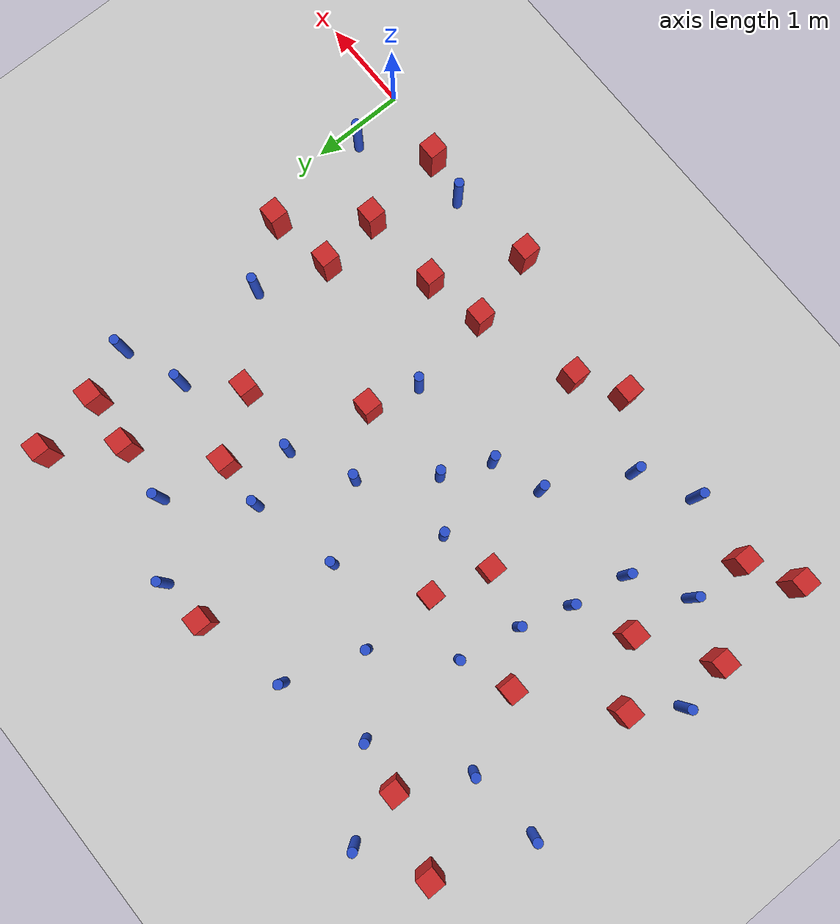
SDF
<sdf version="1.6">
 <world name="default">
  <model name="ground_plane">
   <static>1</static>
   <link name="link">
    <collision name="collision">
     <geometry><plane><normal>0 0 1</normal><size>100 100</size></plane></geometry>
     <surface><friction><ode><mu>100</mu><mu2>50</mu2></ode></friction></surface>
    </collision>
    <visual name="visual">
     <cast_shadows>0</cast_shadows>
     <geometry><plane><normal>0 0 1</normal><size>100 100</size></plane></geometry>
     <material>
      <ambient>1.0 1.0 1.0 1.0</ambient>
      <diffuse>0.8 0.8 0.8 1.0</diffuse>
      <specular>0.01 0.01 0.01 1.000000</specular>
     </material>
    </visual>
   </link>
  </model>
  <model name="pole_obstacle6">
   <static>true</static>
   <pose>-5.10376092105 2.55919030713 -9.47619616065e-06 5.49618799738e-07 2.36310414051e-07 -1.55090534805e-07</pose>
   <link name="link">
    <pose>0 0 0.3 0 -0 0</pose>
    <inertial>
     <mass>1</mass>
     <inertia><ixx>0.145833</ixx><ixy>0</ixy><ixz>0</ixz><iyy>0.145833</iyy><iyz>0</iyz><izz>0.125</izz></inertia>
    </inertial>
    <collision name="collision">
     <geometry><cylinder><radius>0.05</radius><length>.6</length></cylinder></geometry>
    </collision>
    <visual name="visual">
     <geometry><cylinder><radius>0.05</radius><length>.6</length></cylinder></geometry>
     <material>
      <script><name>Gazebo/Blue</name><uri>file://media/materials/scripts/gazebo.material</uri></script>
     </material>
    </visual>
   </link>
  </model>
  <model name="pole_obstacle7">
   <static>true</static>
   <pose>-5.00055378148 4.37309625407 -9.47619616065e-06 5.49618799737e-07 2.36310414037e-07 -1.55090534814e-07</pose>
   <link name="link">
    <pose>0 0 0.3 0 -0 0</pose>
    <inertial>
     <mass>1</mass>
     <inertia><ixx>0.145833</ixx><ixy>0</ixy><ixz>0</ixz><iyy>0.145833</iyy><iyz>0</iyz><izz>0.125</izz></inertia>
    </inertial>
    <collision name="collision">
     <geometry><cylinder><radius>0.05</radius><length>.6</length></cylinder></geometry>
    </collision>
    <visual name="visual">
     <geometry><cylinder><radius>0.05</radius><length>.6</length></cylinder></geometry>
     <material>
      <script><name>Gazebo/Blue</name><uri>file://media/materials/scripts/gazebo.material</uri></script>
     </material>
    </visual>
   </link>
  </model>
  <model name="pole_obstacle13">
   <static>true</static>
   <pose>-5.23885158348 0.395496682585 -9.47619616065e-06 5.49618799737e-07 2.36310414057e-07 -1.55090534802e-07</pose>
   <link name="link">
    <pose>0 0 0.3 0 -0 0</pose>
    <inertial>
     <mass>1</mass>
     <inertia><ixx>0.145833</ixx><ixy>0</ixy><ixz>0</ixz><iyy>0.145833</iyy><iyz>0</iyz><izz>0.125</izz></inertia>
    </inertial>
    <collision name="collision">
     <geometry><cylinder><radius>0.05</radius><length>.6</length></cylinder></geometry>
    </collision>
    <visual name="visual">
     <geometry><cylinder><radius>0.05</radius><length>.6</length></cylinder></geometry>
     <material>
      <script><name>Gazebo/Blue</name><uri>file://media/materials/scripts/gazebo.material</uri></script>
     </material>
    </visual>
   </link>
  </model>
  <model name="square_post_obstacle12">
   <static>true</static>
   <pose>-4.01311779121 0.254424688509 -6.11067671241e-07 -5.50515727128e-06 -8.79689657224e-07 2.37013304536e-05</pose>
   <link name="link">
    <pose>0 0 0.25 0 -0 0</pose>
    <inertial>
     <mass>100</mass>
     <inertia>
      <ixx>0.166667</ixx>
      <ixy>0</ixy>
      <ixz>0</ixz>
      <iyy>0.166667</iyy>
      <iyz>0</iyz>
      <izz>0.166667</izz>
     </inertia>
    </inertial>
    <collision name="collision"><geometry><box><size>.2 .2 .5</size></box></geometry></collision>
    <visual name="visual">
     <geometry><box><size>.2 .2 .5</size></box></geometry>
     <material>
      <script><name>Gazebo/Red</name><uri>file://media/materials/scripts/gazebo.material</uri></script>
     </material>
    </visual>
   </link>
  </model>
  <model name="square_post_obstacle18">
   <static>true</static>
   <pose>-1.27208905666 4.46009019754 -6.11067671241e-07 -5.50515727128e-06 -8.79689657224e-07 2.37013304536e-05</pose>
   <link name="link">
    <pose>0 0 0.25 0 -0 0</pose>
    <inertial>
     <mass>100</mass>
     <inertia>
      <ixx>0.166667</ixx>
      <ixy>0</ixy>
      <ixz>0</ixz>
      <iyy>0.166667</iyy>
      <iyz>0</iyz>
      <izz>0.166667</izz>
     </inertia>
    </inertial>
    <collision name="collision"><geometry><box><size>.2 .2 .5</size></box></geometry></collision>
    <visual name="visual">
     <geometry><box><size>.2 .2 .5</size></box></geometry>
     <material>
      <script><name>Gazebo/Red</name><uri>file://media/materials/scripts/gazebo.material</uri></script>
     </material>
    </visual>
   </link>
  </model>
  <model name="square_post_obstacle26">
   <static>true</static>
   <pose>-2.49033802573 0.884904340049 -6.11067671241e-07 -5.50515727128e-06 -8.79689657224e-07 2.37013304536e-05</pose>
   <link name="link">
    <pose>0 0 0.25 0 -0 0</pose>
    <inertial>
     <mass>100</mass>
     <inertia>
      <ixx>0.166667</ixx>
      <ixy>0</ixy>
      <ixz>0</ixz>
      <iyy>0.166667</iyy>
      <iyz>0</iyz>
      <izz>0.166667</izz>
     </inertia>
    </inertial>
    <collision name="collision"><geometry><box><size>.2 .2 .5</size></box></geometry></collision>
    <visual name="visual">
     <geometry><box><size>.2 .2 .5</size></box></geometry>
     <material>
      <script><name>Gazebo/Red</name><uri>file://media/materials/scripts/gazebo.material</uri></script>
     </material>
    </visual>
   </link>
  </model>
  <model name="square_post_obstacle29">
   <static>true</static>
   <pose>-5.84663001964 1.76819475787 -6.11067671241e-07 -5.50515727128e-06 -8.79689657224e-07 2.37013304536e-05</pose>
   <link name="link">
    <pose>0 0 0.25 0 -0 0</pose>
    <inertial>
     <mass>100</mass>
     <inertia>
      <ixx>0.166667</ixx>
      <ixy>0</ixy>
      <ixz>0</ixz>
      <iyy>0.166667</iyy>
      <iyz>0</iyz>
      <izz>0.166667</izz>
     </inertia>
    </inertial>
    <collision name="collision"><geometry><box><size>.2 .2 .5</size></box></geometry></collision>
    <visual name="visual">
     <geometry><box><size>.2 .2 .5</size></box></geometry>
     <material>
      <script><name>Gazebo/Red</name><uri>file://media/materials/scripts/gazebo.material</uri></script>
     </material>
    </visual>
   </link>
  </model>
  <model name="pole_obstacle42">
   <static>true</static>
   <pose>-0.197924923619 0.635188465131 -9.47619616065e-06 5.49618799737e-07 2.36310414049e-07 -1.55090534807e-07</pose>
   <link name="link">
    <pose>0 0 0.3 0 -0 0</pose>
    <inertial>
     <mass>1</mass>
     <inertia><ixx>0.145833</ixx><ixy>0</ixy><ixz>0</ixz><iyy>0.145833</iyy><iyz>0</iyz><izz>0.125</izz></inertia>
    </inertial>
    <collision name="collision">
     <geometry><cylinder><radius>0.05</radius><length>.6</length></cylinder></geometry>
    </collision>
    <visual name="visual">
     <geometry><cylinder><radius>0.05</radius><length>.6</length></cylinder></geometry>
     <material>
      <script><name>Gazebo/Blue</name><uri>file://media/materials/scripts/gazebo.material</uri></script>
     </material>
    </visual>
   </link>
  </model>
  <model name="square_post_obstacle33">
   <static>true</static>
   <pose>-6.34039666335 4.67710620537 -6.11067671241e-07 -5.50515727128e-06 -8.79689657224e-07 2.37013304536e-05</pose>
   <link name="link">
    <pose>0 0 0.25 0 -0 0</pose>
    <inertial>
     <mass>100</mass>
     <inertia>
      <ixx>0.166667</ixx>
      <ixy>0</ixy>
      <ixz>0</ixz>
      <iyy>0.166667</iyy>
      <iyz>0</iyz>
      <izz>0.166667</izz>
     </inertia>
    </inertial>
    <collision name="collision"><geometry><box><size>.2 .2 .5</size></box></geometry></collision>
    <visual name="visual">
     <geometry><box><size>.2 .2 .5</size></box></geometry>
     <material>
      <script><name>Gazebo/Red</name><uri>file://media/materials/scripts/gazebo.material</uri></script>
     </material>
    </visual>
   </link>
  </model>
  <model name="pole_obstacle49">
   <static>true</static>
   <pose>-3.70185155784 1.71580519767 -9.47619616065e-06 5.49618799737e-07 2.36310414072e-07 -1.55090534793e-07</pose>
   <link name="link">
    <pose>0 0 0.3 0 -0 0</pose>
    <inertial>
     <mass>1</mass>
     <inertia><ixx>0.145833</ixx><ixy>0</ixy><ixz>0</ixz><iyy>0.145833</iyy><iyz>0</iyz><izz>0.125</izz></inertia>
    </inertial>
    <collision name="collision">
     <geometry><cylinder><radius>0.05</radius><length>.6</length></cylinder></geometry>
    </collision>
    <visual name="visual">
     <geometry><cylinder><radius>0.05</radius><length>.6</length></cylinder></geometry>
     <material>
      <script><name>Gazebo/Blue</name><uri>file://media/materials/scripts/gazebo.material</uri></script>
     </material>
    </visual>
   </link>
  </model>
  <model name="pole_obstacle50">
   <static>true</static>
   <pose>-1.11218224081 3.6363627773 -9.47619616065e-06 5.49618799737e-07 2.36310414062e-07 -1.55090534798e-07</pose>
   <link name="link">
    <pose>0 0 0.3 0 -0 0</pose>
    <inertial>
     <mass>1</mass>
     <inertia><ixx>0.145833</ixx><ixy>0</ixy><ixz>0</ixz><iyy>0.145833</iyy><iyz>0</iyz><izz>0.125</izz></inertia>
    </inertial>
    <collision name="collision">
     <geometry><cylinder><radius>0.05</radius><length>.6</length></cylinder></geometry>
    </collision>
    <visual name="visual">
     <geometry><cylinder><radius>0.05</radius><length>.6</length></cylinder></geometry>
     <material>
      <script><name>Gazebo/Blue</name><uri>file://media/materials/scripts/gazebo.material</uri></script>
     </material>
    </visual>
   </link>
  </model>
  <model name="pole_obstacle63">
   <static>true</static>
   <pose>-2.63571803715 1.79776056656 -9.47619616065e-06 5.49618799737e-07 2.36310414072e-07 -1.55090534793e-07</pose>
   <link name="link">
    <pose>0 0 0.3 0 -0 0</pose>
    <inertial>
     <mass>1</mass>
     <inertia><ixx>0.145833</ixx><ixy>0</ixy><ixz>0</ixz><iyy>0.145833</iyy><iyz>0</iyz><izz>0.125</izz></inertia>
    </inertial>
    <collision name="collision">
     <geometry><cylinder><radius>0.05</radius><length>.6</length></cylinder></geometry>
    </collision>
    <visual name="visual">
     <geometry><cylinder><radius>0.05</radius><length>.6</length></cylinder></geometry>
     <material>
      <script><name>Gazebo/Blue</name><uri>file://media/materials/scripts/gazebo.material</uri></script>
     </material>
    </visual>
   </link>
  </model>
  <model name="pole_obstacle66">
   <static>true</static>
   <pose>-4.34469611107 3.8348406761 -9.47619616065e-06 5.49618799738e-07 2.36310414051e-07 -1.55090534805e-07</pose>
   <link name="link">
    <pose>0 0 0.3 0 -0 0</pose>
    <inertial>
     <mass>1</mass>
     <inertia><ixx>0.145833</ixx><ixy>0</ixy><ixz>0</ixz><iyy>0.145833</iyy><iyz>0</iyz><izz>0.125</izz></inertia>
    </inertial>
    <collision name="collision">
     <geometry><cylinder><radius>0.05</radius><length>.6</length></cylinder></geometry>
    </collision>
    <visual name="visual">
     <geometry><cylinder><radius>0.05</radius><length>.6</length></cylinder></geometry>
     <material>
      <script><name>Gazebo/Blue</name><uri>file://media/materials/scripts/gazebo.material</uri></script>
     </material>
    </visual>
   </link>
  </model>
  <model name="square_post_obstacle51">
   <static>true</static>
   <pose>-3.54383364786 0.54393833734 -6.11067671241e-07 -5.50515727128e-06 -8.79689657224e-07 2.37013304536e-05</pose>
   <link name="link">
    <pose>0 0 0.25 0 -0 0</pose>
    <inertial>
     <mass>100</mass>
     <inertia>
      <ixx>0.166667</ixx>
      <ixy>0</ixy>
      <ixz>0</ixz>
      <iyy>0.166667</iyy>
      <iyz>0</iyz>
      <izz>0.166667</izz>
     </inertia>
    </inertial>
    <collision name="collision"><geometry><box><size>.2 .2 .5</size></box></geometry></collision>
    <visual name="visual">
     <geometry><box><size>.2 .2 .5</size></box></geometry>
     <material>
      <script><name>Gazebo/Red</name><uri>file://media/materials/scripts/gazebo.material</uri></script>
     </material>
    </visual>
   </link>
  </model>
  <model name="square_post_obstacle58">
   <static>true</static>
   <pose>-1.85950235046 1.02076430754 -6.11067671241e-07 -5.50515727128e-06 -8.79689657224e-07 2.37013304536e-05</pose>
   <link name="link">
    <pose>0 0 0.25 0 -0 0</pose>
    <inertial>
     <mass>100</mass>
     <inertia>
      <ixx>0.166667</ixx>
      <ixy>0</ixy>
      <ixz>0</ixz>
      <iyy>0.166667</iyy>
      <iyz>0</iyz>
      <izz>0.166667</izz>
     </inertia>
    </inertial>
    <collision name="collision"><geometry><box><size>.2 .2 .5</size></box></geometry></collision>
    <visual name="visual">
     <geometry><box><size>.2 .2 .5</size></box></geometry>
     <material>
      <script><name>Gazebo/Red</name><uri>file://media/materials/scripts/gazebo.material</uri></script>
     </material>
    </visual>
   </link>
  </model>
  <model name="square_post_obstacle61">
   <static>true</static>
   <pose>-5.53237518745 4.44835196103 -6.11067671241e-07 -5.50515727128e-06 -8.79689657224e-07 2.37013304536e-05</pose>
   <link name="link">
    <pose>0 0 0.25 0 -0 0</pose>
    <inertial>
     <mass>100</mass>
     <inertia>
      <ixx>0.166667</ixx>
      <ixy>0</ixy>
      <ixz>0</ixz>
      <iyy>0.166667</iyy>
      <iyz>0</iyz>
      <izz>0.166667</izz>
     </inertia>
    </inertial>
    <collision name="collision"><geometry><box><size>.2 .2 .5</size></box></geometry></collision>
    <visual name="visual">
     <geometry><box><size>.2 .2 .5</size></box></geometry>
     <material>
      <script><name>Gazebo/Red</name><uri>file://media/materials/scripts/gazebo.material</uri></script>
     </material>
    </visual>
   </link>
  </model>
  <model name="pole_obstacle73">
   <static>true</static>
   <pose>-4.21944713733 1.53317868499 -9.47619616065e-06 5.49618799738e-07 2.36310414071e-07 -1.55090534796e-07</pose>
   <link name="link">
    <pose>0 0 0.3 0 -0 0</pose>
    <inertial>
     <mass>1</mass>
     <inertia><ixx>0.145833</ixx><ixy>0</ixy><ixz>0</ixz><iyy>0.145833</iyy><iyz>0</iyz><izz>0.125</izz></inertia>
    </inertial>
    <collision name="collision">
     <geometry><cylinder><radius>0.05</radius><length>.6</length></cylinder></geometry>
    </collision>
    <visual name="visual">
     <geometry><cylinder><radius>0.05</radius><length>.6</length></cylinder></geometry>
     <material>
      <script><name>Gazebo/Blue</name><uri>file://media/materials/scripts/gazebo.material</uri></script>
     </material>
    </visual>
   </link>
  </model>
  <model name="square_post_obstacle66">
   <static>true</static>
   <pose>-6.4949730244 0.183222746557 -6.11067671241e-07 -5.50515727128e-06 -8.79689657224e-07 2.37013304536e-05</pose>
   <link name="link">
    <pose>0 0 0.25 0 -0 0</pose>
    <inertial>
     <mass>100</mass>
     <inertia>
      <ixx>0.166667</ixx>
      <ixy>0</ixy>
      <ixz>0</ixz>
      <iyy>0.166667</iyy>
      <iyz>0</iyz>
      <izz>0.166667</izz>
     </inertia>
    </inertial>
    <collision name="collision"><geometry><box><size>.2 .2 .5</size></box></geometry></collision>
    <visual name="visual">
     <geometry><box><size>.2 .2 .5</size></box></geometry>
     <material>
      <script><name>Gazebo/Red</name><uri>file://media/materials/scripts/gazebo.material</uri></script>
     </material>
    </visual>
   </link>
  </model>
  <model name="pole_obstacle91">
   <static>true</static>
   <pose>-5.95068316213 1.07844094453 -9.47619616065e-06 5.49618799738e-07 2.36310414071e-07 -1.55090534796e-07</pose>
   <link name="link">
    <pose>0 0 0.3 0 -0 0</pose>
    <inertial>
     <mass>1</mass>
     <inertia><ixx>0.145833</ixx><ixy>0</ixy><ixz>0</ixz><iyy>0.145833</iyy><iyz>0</iyz><izz>0.125</izz></inertia>
    </inertial>
    <collision name="collision">
     <geometry><cylinder><radius>0.05</radius><length>.6</length></cylinder></geometry>
    </collision>
    <visual name="visual">
     <geometry><cylinder><radius>0.05</radius><length>.6</length></cylinder></geometry>
     <material>
      <script><name>Gazebo/Blue</name><uri>file://media/materials/scripts/gazebo.material</uri></script>
     </material>
    </visual>
   </link>
  </model>
  <model name="pole_obstacle92">
   <static>true</static>
   <pose>-2.56406762302 3.80577087589 -9.47619616065e-06 5.49618799737e-07 2.36310414051e-07 -1.55090534807e-07</pose>
   <link name="link">
    <pose>0 0 0.3 0 -0 0</pose>
    <inertial>
     <mass>1</mass>
     <inertia><ixx>0.145833</ixx><ixy>0</ixy><ixz>0</ixz><iyy>0.145833</iyy><iyz>0</iyz><izz>0.125</izz></inertia>
    </inertial>
    <collision name="collision">
     <geometry><cylinder><radius>0.05</radius><length>.6</length></cylinder></geometry>
    </collision>
    <visual name="visual">
     <geometry><cylinder><radius>0.05</radius><length>.6</length></cylinder></geometry>
     <material>
      <script><name>Gazebo/Blue</name><uri>file://media/materials/scripts/gazebo.material</uri></script>
     </material>
    </visual>
   </link>
  </model>
  <model name="pole_obstacle94">
   <static>true</static>
   <pose>-2.9785415067 2.89215586736 -9.47619616065e-06 5.49618799737e-07 2.36310414051e-07 -1.55090534807e-07</pose>
   <link name="link">
    <pose>0 0 0.3 0 -0 0</pose>
    <inertial>
     <mass>1</mass>
     <inertia><ixx>0.145833</ixx><ixy>0</ixy><ixz>0</ixz><iyy>0.145833</iyy><iyz>0</iyz><izz>0.125</izz></inertia>
    </inertial>
    <collision name="collision">
     <geometry><cylinder><radius>0.05</radius><length>.6</length></cylinder></geometry>
    </collision>
    <visual name="visual">
     <geometry><cylinder><radius>0.05</radius><length>.6</length></cylinder></geometry>
     <material>
      <script><name>Gazebo/Blue</name><uri>file://media/materials/scripts/gazebo.material</uri></script>
     </material>
    </visual>
   </link>
  </model>
  <model name="pole_obstacle103">
   <static>true</static>
   <pose>-2.33113232156 3.22481978888 -9.47619616065e-06 5.49618799737e-07 2.36310414051e-07 -1.55090534807e-07</pose>
   <link name="link">
    <pose>0 0 0.3 0 -0 0</pose>
    <inertial>
     <mass>1</mass>
     <inertia><ixx>0.145833</ixx><ixy>0</ixy><ixz>0</ixz><iyy>0.145833</iyy><iyz>0</iyz><izz>0.125</izz></inertia>
    </inertial>
    <collision name="collision">
     <geometry><cylinder><radius>0.05</radius><length>.6</length></cylinder></geometry>
    </collision>
    <visual name="visual">
     <geometry><cylinder><radius>0.05</radius><length>.6</length></cylinder></geometry>
     <material>
      <script><name>Gazebo/Blue</name><uri>file://media/materials/scripts/gazebo.material</uri></script>
     </material>
    </visual>
   </link>
  </model>
  <model name="pole_obstacle104">
   <static>true</static>
   <pose>-1.34352056706 0.227027937881 -9.47619616065e-06 5.49618799737e-07 2.36310414063e-07 -1.55090534798e-07</pose>
   <link name="link">
    <pose>0 0 0.3 0 -0 0</pose>
    <inertial>
     <mass>1</mass>
     <inertia><ixx>0.145833</ixx><ixy>0</ixy><ixz>0</ixz><iyy>0.145833</iyy><iyz>0</iyz><izz>0.125</izz></inertia>
    </inertial>
    <collision name="collision">
     <geometry><cylinder><radius>0.05</radius><length>.6</length></cylinder></geometry>
    </collision>
    <visual name="visual">
     <geometry><cylinder><radius>0.05</radius><length>.6</length></cylinder></geometry>
     <material>
      <script><name>Gazebo/Blue</name><uri>file://media/materials/scripts/gazebo.material</uri></script>
     </material>
    </visual>
   </link>
  </model>
  <model name="pole_obstacle105">
   <static>true</static>
   <pose>-3.49215399866 3.57960215847 -9.47619616065e-06 5.49618799737e-07 2.36310414067e-07 -1.55090534797e-07</pose>
   <link name="link">
    <pose>0 0 0.3 0 -0 0</pose>
    <inertial>
     <mass>1</mass>
     <inertia><ixx>0.145833</ixx><ixy>0</ixy><ixz>0</ixz><iyy>0.145833</iyy><iyz>0</iyz><izz>0.125</izz></inertia>
    </inertial>
    <collision name="collision">
     <geometry><cylinder><radius>0.05</radius><length>.6</length></cylinder></geometry>
    </collision>
    <visual name="visual">
     <geometry><cylinder><radius>0.05</radius><length>.6</length></cylinder></geometry>
     <material>
      <script><name>Gazebo/Blue</name><uri>file://media/materials/scripts/gazebo.material</uri></script>
     </material>
    </visual>
   </link>
  </model>
  <model name="pole_obstacle108">
   <static>true</static>
   <pose>-6.67488484027 3.69238317947 -9.47619616065e-06 5.49618799738e-07 2.36310414051e-07 -1.55090534805e-07</pose>
   <link name="link">
    <pose>0 0 0.3 0 -0 0</pose>
    <inertial>
     <mass>1</mass>
     <inertia><ixx>0.145833</ixx><ixy>0</ixy><ixz>0</ixz><iyy>0.145833</iyy><iyz>0</iyz><izz>0.125</izz></inertia>
    </inertial>
    <collision name="collision">
     <geometry><cylinder><radius>0.05</radius><length>.6</length></cylinder></geometry>
    </collision>
    <visual name="visual">
     <geometry><cylinder><radius>0.05</radius><length>.6</length></cylinder></geometry>
     <material>
      <script><name>Gazebo/Blue</name><uri>file://media/materials/scripts/gazebo.material</uri></script>
     </material>
    </visual>
   </link>
  </model>
  <model name="square_post_obstacle104">
   <static>true</static>
   <pose>-6.58203888861 1.28197246124 -6.11067671241e-07 -5.50515727128e-06 -8.79689657224e-07 2.37013304536e-05</pose>
   <link name="link">
    <pose>0 0 0.25 0 -0 0</pose>
    <inertial>
     <mass>100</mass>
     <inertia>
      <ixx>0.166667</ixx>
      <ixy>0</ixy>
      <ixz>0</ixz>
      <iyy>0.166667</iyy>
      <iyz>0</iyz>
      <izz>0.166667</izz>
     </inertia>
    </inertial>
    <collision name="collision"><geometry><box><size>.2 .2 .5</size></box></geometry></collision>
    <visual name="visual">
     <geometry><box><size>.2 .2 .5</size></box></geometry>
     <material>
      <script><name>Gazebo/Red</name><uri>file://media/materials/scripts/gazebo.material</uri></script>
     </material>
    </visual>
   </link>
  </model>
  <model name="square_post_obstacle110">
   <static>true</static>
   <pose>-1.57730864927 3.1693145016 -6.11067671241e-07 -5.50515727128e-06 -8.79689657224e-07 2.37013304536e-05</pose>
   <link name="link">
    <pose>0 0 0.25 0 -0 0</pose>
    <inertial>
     <mass>100</mass>
     <inertia>
      <ixx>0.166667</ixx>
      <ixy>0</ixy>
      <ixz>0</ixz>
      <iyy>0.166667</iyy>
      <iyz>0</iyz>
      <izz>0.166667</izz>
     </inertia>
    </inertial>
    <collision name="collision"><geometry><box><size>.2 .2 .5</size></box></geometry></collision>
    <visual name="visual">
     <geometry><box><size>.2 .2 .5</size></box></geometry>
     <material>
      <script><name>Gazebo/Red</name><uri>file://media/materials/scripts/gazebo.material</uri></script>
     </material>
    </visual>
   </link>
  </model>
  <model name="pole_obstacle117">
   <static>true</static>
   <pose>-6.67897491556 1.82289677754 -9.47619616065e-06 5.49618799738e-07 2.36310414071e-07 -1.55090534796e-07</pose>
   <link name="link">
    <pose>0 0 0.3 0 -0 0</pose>
    <inertial>
     <mass>1</mass>
     <inertia><ixx>0.145833</ixx><ixy>0</ixy><ixz>0</ixz><iyy>0.145833</iyy><iyz>0</iyz><izz>0.125</izz></inertia>
    </inertial>
    <collision name="collision">
     <geometry><cylinder><radius>0.05</radius><length>.6</length></cylinder></geometry>
    </collision>
    <visual name="visual">
     <geometry><cylinder><radius>0.05</radius><length>.6</length></cylinder></geometry>
     <material>
      <script><name>Gazebo/Blue</name><uri>file://media/materials/scripts/gazebo.material</uri></script>
     </material>
    </visual>
   </link>
  </model>
  <model name="square_post_obstacle117">
   <static>true</static>
   <pose>-5.51201161902 2.99361216297 -6.11067671241e-07 -5.50515727128e-06 -8.79689657224e-07 2.37013304536e-05</pose>
   <link name="link">
    <pose>0 0 0.25 0 -0 0</pose>
    <inertial>
     <mass>100</mass>
     <inertia>
      <ixx>0.166667</ixx>
      <ixy>0</ixy>
      <ixz>0</ixz>
      <iyy>0.166667</iyy>
      <iyz>0</iyz>
      <izz>0.166667</izz>
     </inertia>
    </inertial>
    <collision name="collision"><geometry><box><size>.2 .2 .5</size></box></geometry></collision>
    <visual name="visual">
     <geometry><box><size>.2 .2 .5</size></box></geometry>
     <material>
      <script><name>Gazebo/Red</name><uri>file://media/materials/scripts/gazebo.material</uri></script>
     </material>
    </visual>
   </link>
  </model>
  <model name="pole_obstacle121">
   <static>true</static>
   <pose>-0.464371728937 3.88132874815 -9.47619616065e-06 5.49618799737e-07 2.36310414073e-07 -1.55090534793e-07</pose>
   <link name="link">
    <pose>0 0 0.3 0 -0 0</pose>
    <inertial>
     <mass>1</mass>
     <inertia><ixx>0.145833</ixx><ixy>0</ixy><ixz>0</ixz><iyy>0.145833</iyy><iyz>0</iyz><izz>0.125</izz></inertia>
    </inertial>
    <collision name="collision">
     <geometry><cylinder><radius>0.05</radius><length>.6</length></cylinder></geometry>
    </collision>
    <visual name="visual">
     <geometry><cylinder><radius>0.05</radius><length>.6</length></cylinder></geometry>
     <material>
      <script><name>Gazebo/Blue</name><uri>file://media/materials/scripts/gazebo.material</uri></script>
     </material>
    </visual>
   </link>
  </model>
  <model name="pole_obstacle125">
   <static>true</static>
   <pose>-3.96030596073 2.55937513477 -9.47619616065e-06 5.49618799738e-07 2.36310414039e-07 -1.55090534813e-07</pose>
   <link name="link">
    <pose>0 0 0.3 0 -0 0</pose>
    <inertial>
     <mass>1</mass>
     <inertia><ixx>0.145833</ixx><ixy>0</ixy><ixz>0</ixz><iyy>0.145833</iyy><iyz>0</iyz><izz>0.125</izz></inertia>
    </inertial>
    <collision name="collision">
     <geometry><cylinder><radius>0.05</radius><length>.6</length></cylinder></geometry>
    </collision>
    <visual name="visual">
     <geometry><cylinder><radius>0.05</radius><length>.6</length></cylinder></geometry>
     <material>
      <script><name>Gazebo/Blue</name><uri>file://media/materials/scripts/gazebo.material</uri></script>
     </material>
    </visual>
   </link>
  </model>
  <model name="square_post_obstacle127">
   <static>true</static>
   <pose>-6.35562109652 2.28651303624 -6.11067671241e-07 -5.50515727128e-06 -8.79689657224e-07 2.37013304536e-05</pose>
   <link name="link">
    <pose>0 0 0.25 0 -0 0</pose>
    <inertial>
     <mass>100</mass>
     <inertia>
      <ixx>0.166667</ixx>
      <ixy>0</ixy>
      <ixz>0</ixz>
      <iyy>0.166667</iyy>
      <iyz>0</iyz>
      <izz>0.166667</izz>
     </inertia>
    </inertial>
    <collision name="collision"><geometry><box><size>.2 .2 .5</size></box></geometry></collision>
    <visual name="visual">
     <geometry><box><size>.2 .2 .5</size></box></geometry>
     <material>
      <script><name>Gazebo/Red</name><uri>file://media/materials/scripts/gazebo.material</uri></script>
     </material>
    </visual>
   </link>
  </model>
  <model name="square_post_obstacle131">
   <static>true</static>
   <pose>-1.05085739935 1.72279910085 -6.11067671241e-07 -5.50515727128e-06 -8.79689657224e-07 2.37013304536e-05</pose>
   <link name="link">
    <pose>0 0 0.25 0 -0 0</pose>
    <inertial>
     <mass>100</mass>
     <inertia>
      <ixx>0.166667</ixx>
      <ixy>0</ixy>
      <ixz>0</ixz>
      <iyy>0.166667</iyy>
      <iyz>0</iyz>
      <izz>0.166667</izz>
     </inertia>
    </inertial>
    <collision name="collision"><geometry><box><size>.2 .2 .5</size></box></geometry></collision>
    <visual name="visual">
     <geometry><box><size>.2 .2 .5</size></box></geometry>
     <material>
      <script><name>Gazebo/Red</name><uri>file://media/materials/scripts/gazebo.material</uri></script>
     </material>
    </visual>
   </link>
  </model>
  <model name="square_post_obstacle137">
   <static>true</static>
   <pose>-2.26107750884 0.107256701379 -6.11067671241e-07 -5.50515727128e-06 -8.79689657224e-07 2.37013304536e-05</pose>
   <link name="link">
    <pose>0 0 0.25 0 -0 0</pose>
    <inertial>
     <mass>100</mass>
     <inertia>
      <ixx>0.166667</ixx>
      <ixy>0</ixy>
      <ixz>0</ixz>
      <iyy>0.166667</iyy>
      <iyz>0</iyz>
      <izz>0.166667</izz>
     </inertia>
    </inertial>
    <collision name="collision"><geometry><box><size>.2 .2 .5</size></box></geometry></collision>
    <visual name="visual">
     <geometry><box><size>.2 .2 .5</size></box></geometry>
     <material>
      <script><name>Gazebo/Red</name><uri>file://media/materials/scripts/gazebo.material</uri></script>
     </material>
    </visual>
   </link>
  </model>
  <model name="pole_obstacle143">
   <static>true</static>
   <pose>-4.66655372075 0.700387323387 -9.47619616065e-06 5.49618799737e-07 2.36310414061e-07 -1.550905348e-07</pose>
   <link name="link">
    <pose>0 0 0.3 0 -0 0</pose>
    <inertial>
     <mass>1</mass>
     <inertia><ixx>0.145833</ixx><ixy>0</ixy><ixz>0</ixz><iyy>0.145833</iyy><iyz>0</iyz><izz>0.125</izz></inertia>
    </inertial>
    <collision name="collision">
     <geometry><cylinder><radius>0.05</radius><length>.6</length></cylinder></geometry>
    </collision>
    <visual name="visual">
     <geometry><cylinder><radius>0.05</radius><length>.6</length></cylinder></geometry>
     <material>
      <script><name>Gazebo/Blue</name><uri>file://media/materials/scripts/gazebo.material</uri></script>
     </material>
    </visual>
   </link>
  </model>
  <model name="pole_obstacle148">
   <static>true</static>
   <pose>-2.60408844397 4.97150435715 -9.47619616065e-06 5.49618799738e-07 2.3631041406e-07 -1.55090534801e-07</pose>
   <link name="link">
    <pose>0 0 0.3 0 -0 0</pose>
    <inertial>
     <mass>1</mass>
     <inertia><ixx>0.145833</ixx><ixy>0</ixy><ixz>0</ixz><iyy>0.145833</iyy><iyz>0</iyz><izz>0.125</izz></inertia>
    </inertial>
    <collision name="collision">
     <geometry><cylinder><radius>0.05</radius><length>.6</length></cylinder></geometry>
    </collision>
    <visual name="visual">
     <geometry><cylinder><radius>0.05</radius><length>.6</length></cylinder></geometry>
     <material>
      <script><name>Gazebo/Blue</name><uri>file://media/materials/scripts/gazebo.material</uri></script>
     </material>
    </visual>
   </link>
  </model>
  <model name="pole_obstacle150">
   <static>true</static>
   <pose>-5.67676347103 5.0507247917 -9.47619616065e-06 5.49618799737e-07 2.36310414037e-07 -1.55090534814e-07</pose>
   <link name="link">
    <pose>0 0 0.3 0 -0 0</pose>
    <inertial>
     <mass>1</mass>
     <inertia><ixx>0.145833</ixx><ixy>0</ixy><ixz>0</ixz><iyy>0.145833</iyy><iyz>0</iyz><izz>0.125</izz></inertia>
    </inertial>
    <collision name="collision">
     <geometry><cylinder><radius>0.05</radius><length>.6</length></cylinder></geometry>
    </collision>
    <visual name="visual">
     <geometry><cylinder><radius>0.05</radius><length>.6</length></cylinder></geometry>
     <material>
      <script><name>Gazebo/Blue</name><uri>file://media/materials/scripts/gazebo.material</uri></script>
     </material>
    </visual>
   </link>
  </model>
  <model name="square_post_obstacle146">
   <static>true</static>
   <pose>-5.99469433617 0.465458420054 -6.11067671241e-07 -5.50515727128e-06 -8.79689657224e-07 2.37013304536e-05</pose>
   <link name="link">
    <pose>0 0 0.25 0 -0 0</pose>
    <inertial>
     <mass>100</mass>
     <inertia>
      <ixx>0.166667</ixx>
      <ixy>0</ixy>
      <ixz>0</ixz>
      <iyy>0.166667</iyy>
      <iyz>0</iyz>
      <izz>0.166667</izz>
     </inertia>
    </inertial>
    <collision name="collision"><geometry><box><size>.2 .2 .5</size></box></geometry></collision>
    <visual name="visual">
     <geometry><box><size>.2 .2 .5</size></box></geometry>
     <material>
      <script><name>Gazebo/Red</name><uri>file://media/materials/scripts/gazebo.material</uri></script>
     </material>
    </visual>
   </link>
  </model>
  <model name="square_post_obstacle147">
   <static>true</static>
   <pose>-0.842383306524 0.153705758109 -6.11067671241e-07 -5.50515727128e-06 -8.79689657224e-07 2.37013304536e-05</pose>
   <link name="link">
    <pose>0 0 0.25 0 -0 0</pose>
    <inertial>
     <mass>100</mass>
     <inertia>
      <ixx>0.166667</ixx>
      <ixy>0</ixy>
      <ixz>0</ixz>
      <iyy>0.166667</iyy>
      <iyz>0</iyz>
      <izz>0.166667</izz>
     </inertia>
    </inertial>
    <collision name="collision"><geometry><box><size>.2 .2 .5</size></box></geometry></collision>
    <visual name="visual">
     <geometry><box><size>.2 .2 .5</size></box></geometry>
     <material>
      <script><name>Gazebo/Red</name><uri>file://media/materials/scripts/gazebo.material</uri></script>
     </material>
    </visual>
   </link>
  </model>
  <model name="pole_obstacle158">
   <static>true</static>
   <pose>-5.3826525849 1.43235340465 -9.47619616065e-06 5.49618799738e-07 2.36310414071e-07 -1.55090534796e-07</pose>
   <link name="link">
    <pose>0 0 0.3 0 -0 0</pose>
    <inertial>
     <mass>1</mass>
     <inertia><ixx>0.145833</ixx><ixy>0</ixy><ixz>0</ixz><iyy>0.145833</iyy><iyz>0</iyz><izz>0.125</izz></inertia>
    </inertial>
    <collision name="collision">
     <geometry><cylinder><radius>0.05</radius><length>.6</length></cylinder></geometry>
    </collision>
    <visual name="visual">
     <geometry><cylinder><radius>0.05</radius><length>.6</length></cylinder></geometry>
     <material>
      <script><name>Gazebo/Blue</name><uri>file://media/materials/scripts/gazebo.material</uri></script>
     </material>
    </visual>
   </link>
  </model>
  <model name="pole_obstacle161">
   <static>true</static>
   <pose>-0.81223182879 2.45375884677 -9.47619616065e-06 5.49618799737e-07 2.36310414066e-07 -1.55090534797e-07</pose>
   <link name="link">
    <pose>0 0 0.3 0 -0 0</pose>
    <inertial>
     <mass>1</mass>
     <inertia><ixx>0.145833</ixx><ixy>0</ixy><ixz>0</ixz><iyy>0.145833</iyy><iyz>0</iyz><izz>0.125</izz></inertia>
    </inertial>
    <collision name="collision">
     <geometry><cylinder><radius>0.05</radius><length>.6</length></cylinder></geometry>
    </collision>
    <visual name="visual">
     <geometry><cylinder><radius>0.05</radius><length>.6</length></cylinder></geometry>
     <material>
      <script><name>Gazebo/Blue</name><uri>file://media/materials/scripts/gazebo.material</uri></script>
     </material>
    </visual>
   </link>
  </model>
  <model name="pole_obstacle164">
   <static>true</static>
   <pose>-5.26545580073 2.032225328 -9.47619616065e-06 5.49618799737e-07 2.36310414065e-07 -1.55090534797e-07</pose>
   <link name="link">
    <pose>0 0 0.3 0 -0 0</pose>
    <inertial>
     <mass>1</mass>
     <inertia><ixx>0.145833</ixx><ixy>0</ixy><ixz>0</ixz><iyy>0.145833</iyy><iyz>0</iyz><izz>0.125</izz></inertia>
    </inertial>
    <collision name="collision">
     <geometry><cylinder><radius>0.05</radius><length>.6</length></cylinder></geometry>
    </collision>
    <visual name="visual">
     <geometry><cylinder><radius>0.05</radius><length>.6</length></cylinder></geometry>
     <material>
      <script><name>Gazebo/Blue</name><uri>file://media/materials/scripts/gazebo.material</uri></script>
     </material>
    </visual>
   </link>
  </model>
  <model name="square_post_obstacle164">
   <static>true</static>
   <pose>-0.360828737076 1.8420314127 -6.11067671241e-07 -5.50515727128e-06 -8.79689657224e-07 2.37013304536e-05</pose>
   <link name="link">
    <pose>0 0 0.25 0 -0 0</pose>
    <inertial>
     <mass>100</mass>
     <inertia>
      <ixx>0.166667</ixx>
      <ixy>0</ixy>
      <ixz>0</ixz>
      <iyy>0.166667</iyy>
      <iyz>0</iyz>
      <izz>0.166667</izz>
     </inertia>
    </inertial>
    <collision name="collision"><geometry><box><size>.2 .2 .5</size></box></geometry></collision>
    <visual name="visual">
     <geometry><box><size>.2 .2 .5</size></box></geometry>
     <material>
      <script><name>Gazebo/Red</name><uri>file://media/materials/scripts/gazebo.material</uri></script>
     </material>
    </visual>
   </link>
  </model>
  <model name="pole_obstacle170">
   <static>true</static>
   <pose>-1.90946891391 4.50102661503 -9.47619616065e-06 5.49618799737e-07 2.36310414061e-07 -1.550905348e-07</pose>
   <link name="link">
    <pose>0 0 0.3 0 -0 0</pose>
    <inertial>
     <mass>1</mass>
     <inertia><ixx>0.145833</ixx><ixy>0</ixy><ixz>0</ixz><iyy>0.145833</iyy><iyz>0</iyz><izz>0.125</izz></inertia>
    </inertial>
    <collision name="collision">
     <geometry><cylinder><radius>0.05</radius><length>.6</length></cylinder></geometry>
    </collision>
    <visual name="visual">
     <geometry><cylinder><radius>0.05</radius><length>.6</length></cylinder></geometry>
     <material>
      <script><name>Gazebo/Blue</name><uri>file://media/materials/scripts/gazebo.material</uri></script>
     </material>
    </visual>
   </link>
  </model>
  <model name="pole_obstacle173">
   <static>true</static>
   <pose>-3.47902976263 2.21171433848 -9.47619616065e-06 5.49618799737e-07 2.36310414051e-07 -1.55090534807e-07</pose>
   <link name="link">
    <pose>0 0 0.3 0 -0 0</pose>
    <inertial>
     <mass>1</mass>
     <inertia><ixx>0.145833</ixx><ixy>0</ixy><ixz>0</ixz><iyy>0.145833</iyy><iyz>0</iyz><izz>0.125</izz></inertia>
    </inertial>
    <collision name="collision">
     <geometry><cylinder><radius>0.05</radius><length>.6</length></cylinder></geometry>
    </collision>
    <visual name="visual">
     <geometry><cylinder><radius>0.05</radius><length>.6</length></cylinder></geometry>
     <material>
      <script><name>Gazebo/Blue</name><uri>file://media/materials/scripts/gazebo.material</uri></script>
     </material>
    </visual>
   </link>
  </model>
  <model name="square_post_obstacle173">
   <static>true</static>
   <pose>-0.979010647465 1.07323366299 -6.11067671241e-07 -5.50515727128e-06 -8.79689657224e-07 2.37013304536e-05</pose>
   <link name="link">
    <pose>0 0 0.25 0 -0 0</pose>
    <inertial>
     <mass>100</mass>
     <inertia>
      <ixx>0.166667</ixx>
      <ixy>0</ixy>
      <ixz>0</ixz>
      <iyy>0.166667</iyy>
      <iyz>0</iyz>
      <izz>0.166667</izz>
     </inertia>
    </inertial>
    <collision name="collision"><geometry><box><size>.2 .2 .5</size></box></geometry></collision>
    <visual name="visual">
     <geometry><box><size>.2 .2 .5</size></box></geometry>
     <material>
      <script><name>Gazebo/Red</name><uri>file://media/materials/scripts/gazebo.material</uri></script>
     </material>
    </visual>
   </link>
  </model>
  <model name="square_post_obstacle178">
   <static>true</static>
   <pose>-4.33661380765 3.03287610734 -6.11067671241e-07 -5.50515727128e-06 -8.79689657224e-07 2.37013304536e-05</pose>
   <link name="link">
    <pose>0 0 0.25 0 -0 0</pose>
    <inertial>
     <mass>100</mass>
     <inertia>
      <ixx>0.166667</ixx>
      <ixy>0</ixy>
      <ixz>0</ixz>
      <iyy>0.166667</iyy>
      <iyz>0</iyz>
      <izz>0.166667</izz>
     </inertia>
    </inertial>
    <collision name="collision"><geometry><box><size>.2 .2 .5</size></box></geometry></collision>
    <visual name="visual">
     <geometry><box><size>.2 .2 .5</size></box></geometry>
     <material>
      <script><name>Gazebo/Red</name><uri>file://media/materials/scripts/gazebo.material</uri></script>
     </material>
    </visual>
   </link>
  </model>
  <model name="square_post_obstacle182">
   <static>true</static>
   <pose>-4.50428795685 2.41541735357 -6.11067671241e-07 -5.50515727128e-06 -8.79689657224e-07 2.37013304536e-05</pose>
   <link name="link">
    <pose>0 0 0.25 0 -0 0</pose>
    <inertial>
     <mass>100</mass>
     <inertia>
      <ixx>0.166667</ixx>
      <ixy>0</ixy>
      <ixz>0</ixz>
      <iyy>0.166667</iyy>
      <iyz>0</iyz>
      <izz>0.166667</izz>
     </inertia>
    </inertial>
    <collision name="collision"><geometry><box><size>.2 .2 .5</size></box></geometry></collision>
    <visual name="visual">
     <geometry><box><size>.2 .2 .5</size></box></geometry>
     <material>
      <script><name>Gazebo/Red</name><uri>file://media/materials/scripts/gazebo.material</uri></script>
     </material>
    </visual>
   </link>
  </model>
  <model name="square_post_obstacle194">
   <static>true</static>
   <pose>-2.03253481897 3.79169060563 -6.11067671241e-07 -5.50515727128e-06 -8.79689657224e-07 2.37013304536e-05</pose>
   <link name="link">
    <pose>0 0 0.25 0 -0 0</pose>
    <inertial>
     <mass>100</mass>
     <inertia>
      <ixx>0.166667</ixx>
      <ixy>0</ixy>
      <ixz>0</ixz>
      <iyy>0.166667</iyy>
      <iyz>0</iyz>
      <izz>0.166667</izz>
     </inertia>
    </inertial>
    <collision name="collision"><geometry><box><size>.2 .2 .5</size></box></geometry></collision>
    <visual name="visual">
     <geometry><box><size>.2 .2 .5</size></box></geometry>
     <material>
      <script><name>Gazebo/Red</name><uri>file://media/materials/scripts/gazebo.material</uri></script>
     </material>
    </visual>
   </link>
  </model>
  <model name="pole_obstacle188">
   <static>true</static>
   <pose>-4.98102137921 3.20428428528 -9.47619616065e-06 5.49618799738e-07 2.36310414051e-07 -1.55090534805e-07</pose>
   <link name="link">
    <pose>0 0 0.3 0 -0 0</pose>
    <inertial>
     <mass>1</mass>
     <inertia><ixx>0.145833</ixx><ixy>0</ixy><ixz>0</ixz><iyy>0.145833</iyy><iyz>0</iyz><izz>0.125</izz></inertia>
    </inertial>
    <collision name="collision">
     <geometry><cylinder><radius>0.05</radius><length>.6</length></cylinder></geometry>
    </collision>
    <visual name="visual">
     <geometry><cylinder><radius>0.05</radius><length>.6</length></cylinder></geometry>
     <material>
      <script><name>Gazebo/Blue</name><uri>file://media/materials/scripts/gazebo.material</uri></script>
     </material>
    </visual>
   </link>
  </model>
  <model name="square_post_obstacle199">
   <static>true</static>
   <pose>-3.1229821949 4.91080955634 -6.11067671241e-07 -5.50515727128e-06 -8.79689657224e-07 2.37013304536e-05</pose>
   <link name="link">
    <pose>0 0 0.25 0 -0 0</pose>
    <inertial>
     <mass>100</mass>
     <inertia>
      <ixx>0.166667</ixx>
      <ixy>0</ixy>
      <ixz>0</ixz>
      <iyy>0.166667</iyy>
      <iyz>0</iyz>
      <izz>0.166667</izz>
     </inertia>
    </inertial>
    <collision name="collision"><geometry><box><size>.2 .2 .5</size></box></geometry></collision>
    <visual name="visual">
     <geometry><box><size>.2 .2 .5</size></box></geometry>
     <material>
      <script><name>Gazebo/Red</name><uri>file://media/materials/scripts/gazebo.material</uri></script>
     </material>
    </visual>
   </link>
  </model>
  <model name="square_post_obstacle201">
   <static>true</static>
   <pose>-2.49320874523 2.33488762153 -6.11067671241e-07 -5.50515727128e-06 -8.79689657224e-07 2.37013304536e-05</pose>
   <link name="link">
    <pose>0 0 0.25 0 -0 0</pose>
    <inertial>
     <mass>100</mass>
     <inertia>
      <ixx>0.166667</ixx>
      <ixy>0</ixy>
      <ixz>0</ixz>
      <iyy>0.166667</iyy>
      <iyz>0</iyz>
      <izz>0.166667</izz>
     </inertia>
    </inertial>
    <collision name="collision"><geometry><box><size>.2 .2 .5</size></box></geometry></collision>
    <visual name="visual">
     <geometry><box><size>.2 .2 .5</size></box></geometry>
     <material>
      <script><name>Gazebo/Red</name><uri>file://media/materials/scripts/gazebo.material</uri></script>
     </material>
    </visual>
   </link>
  </model>
  <model name="square_post_obstacle211">
   <static>true</static>
   <pose>-0.690511596645 4.41008972222 -6.11067671241e-07 -5.50515727128e-06 -8.79689657224e-07 2.37013304536e-05</pose>
   <link name="link">
    <pose>0 0 0.25 0 -0 0</pose>
    <inertial>
     <mass>100</mass>
     <inertia>
      <ixx>0.166667</ixx>
      <ixy>0</ixy>
      <ixz>0</ixz>
      <iyy>0.166667</iyy>
      <iyz>0</iyz>
      <izz>0.166667</izz>
     </inertia>
    </inertial>
    <collision name="collision"><geometry><box><size>.2 .2 .5</size></box></geometry></collision>
    <visual name="visual">
     <geometry><box><size>.2 .2 .5</size></box></geometry>
     <material>
      <script><name>Gazebo/Red</name><uri>file://media/materials/scripts/gazebo.material</uri></script>
     </material>
    </visual>
   </link>
  </model>
  <model name="square_post_obstacle212">
   <static>true</static>
   <pose>-0.805923672089 5.12106491616 -6.11067671241e-07 -5.50515727128e-06 -8.79689657224e-07 2.37013304536e-05</pose>
   <link name="link">
    <pose>0 0 0.25 0 -0 0</pose>
    <inertial>
     <mass>100</mass>
     <inertia>
      <ixx>0.166667</ixx>
      <ixy>0</ixy>
      <ixz>0</ixz>
      <iyy>0.166667</iyy>
      <iyz>0</iyz>
      <izz>0.166667</izz>
     </inertia>
    </inertial>
    <collision name="collision"><geometry><box><size>.2 .2 .5</size></box></geometry></collision>
    <visual name="visual">
     <geometry><box><size>.2 .2 .5</size></box></geometry>
     <material>
      <script><name>Gazebo/Red</name><uri>file://media/materials/scripts/gazebo.material</uri></script>
     </material>
    </visual>
   </link>
  </model>
  <model name="pole_obstacle215">
   <static>true</static>
   <pose>-4.08005951704 4.6621968786 -9.47619616065e-06 5.49618799737e-07 2.36310414037e-07 -1.55090534814e-07</pose>
   <link name="link">
    <pose>0 0 0.3 0 -0 0</pose>
    <inertial>
     <mass>1</mass>
     <inertia><ixx>0.145833</ixx><ixy>0</ixy><ixz>0</ixz><iyy>0.145833</iyy><iyz>0</iyz><izz>0.125</izz></inertia>
    </inertial>
    <collision name="collision">
     <geometry><cylinder><radius>0.05</radius><length>.6</length></cylinder></geometry>
    </collision>
    <visual name="visual">
     <geometry><cylinder><radius>0.05</radius><length>.6</length></cylinder></geometry>
     <material>
      <script><name>Gazebo/Blue</name><uri>file://media/materials/scripts/gazebo.material</uri></script>
     </material>
    </visual>
   </link>
  </model>
  <model name="pole_obstacle220">
   <static>true</static>
   <pose>-5.88176447621 3.76579240726 -9.47619616065e-06 5.49618799738e-07 2.36310414051e-07 -1.55090534805e-07</pose>
   <link name="link">
    <pose>0 0 0.3 0 -0 0</pose>
    <inertial>
     <mass>1</mass>
     <inertia><ixx>0.145833</ixx><ixy>0</ixy><ixz>0</ixz><iyy>0.145833</iyy><iyz>0</iyz><izz>0.125</izz></inertia>
    </inertial>
    <collision name="collision">
     <geometry><cylinder><radius>0.05</radius><length>.6</length></cylinder></geometry>
    </collision>
    <visual name="visual">
     <geometry><cylinder><radius>0.05</radius><length>.6</length></cylinder></geometry>
     <material>
      <script><name>Gazebo/Blue</name><uri>file://media/materials/scripts/gazebo.material</uri></script>
     </material>
    </visual>
   </link>
  </model>
 </world>
</sdf>
